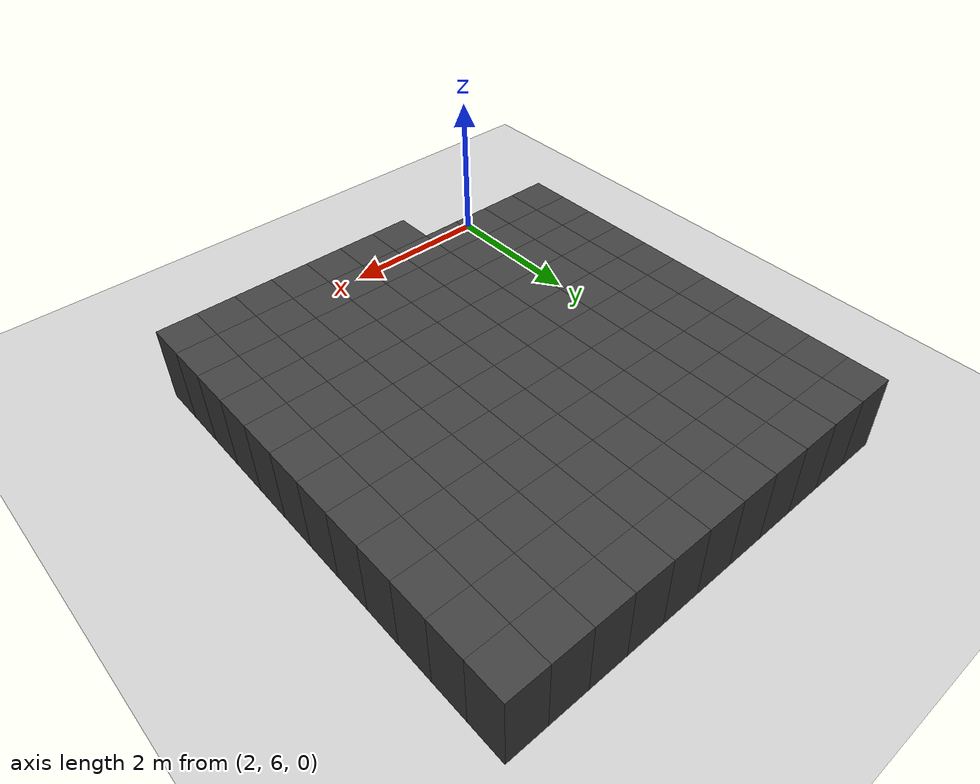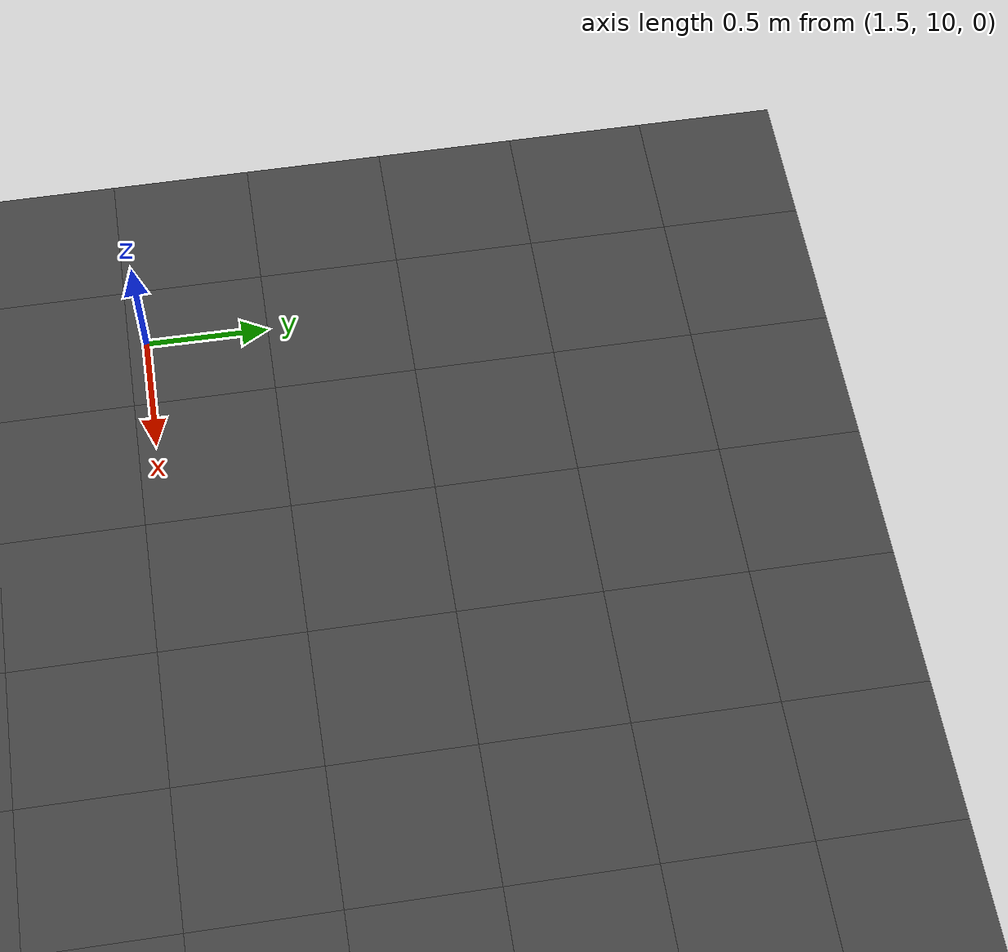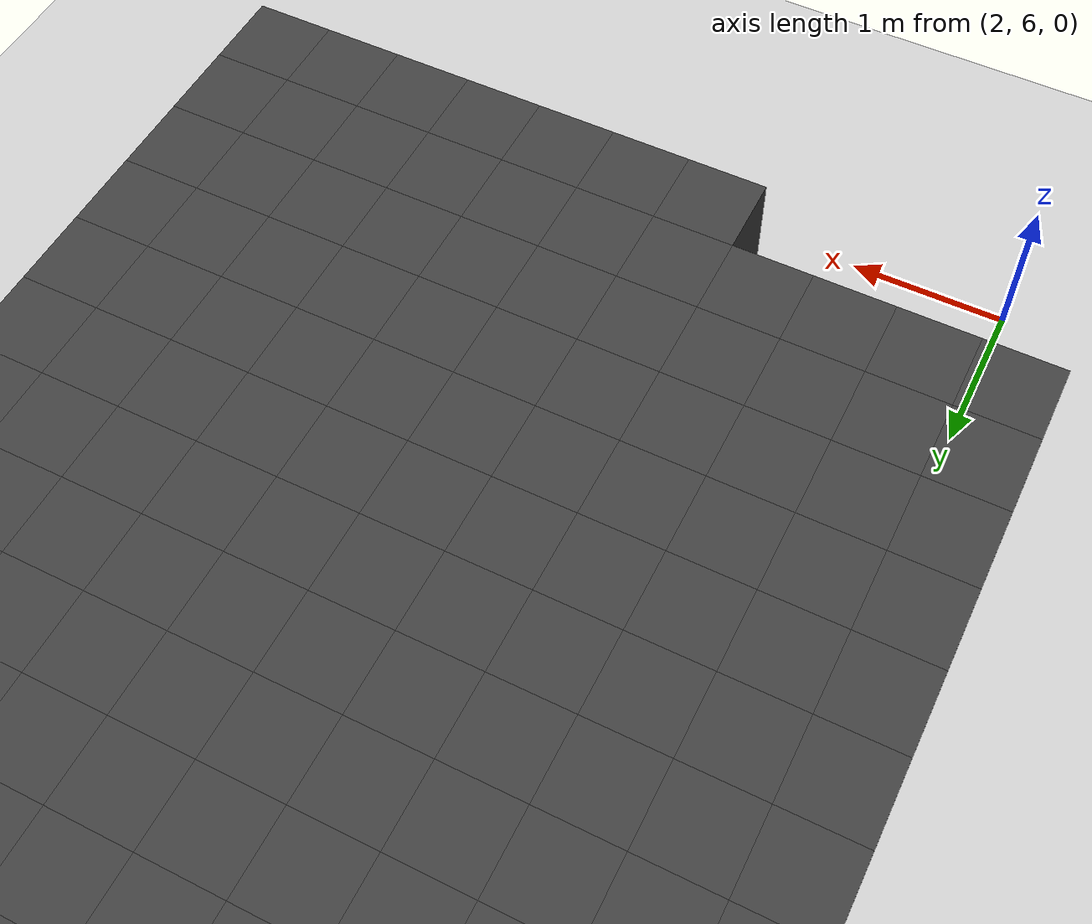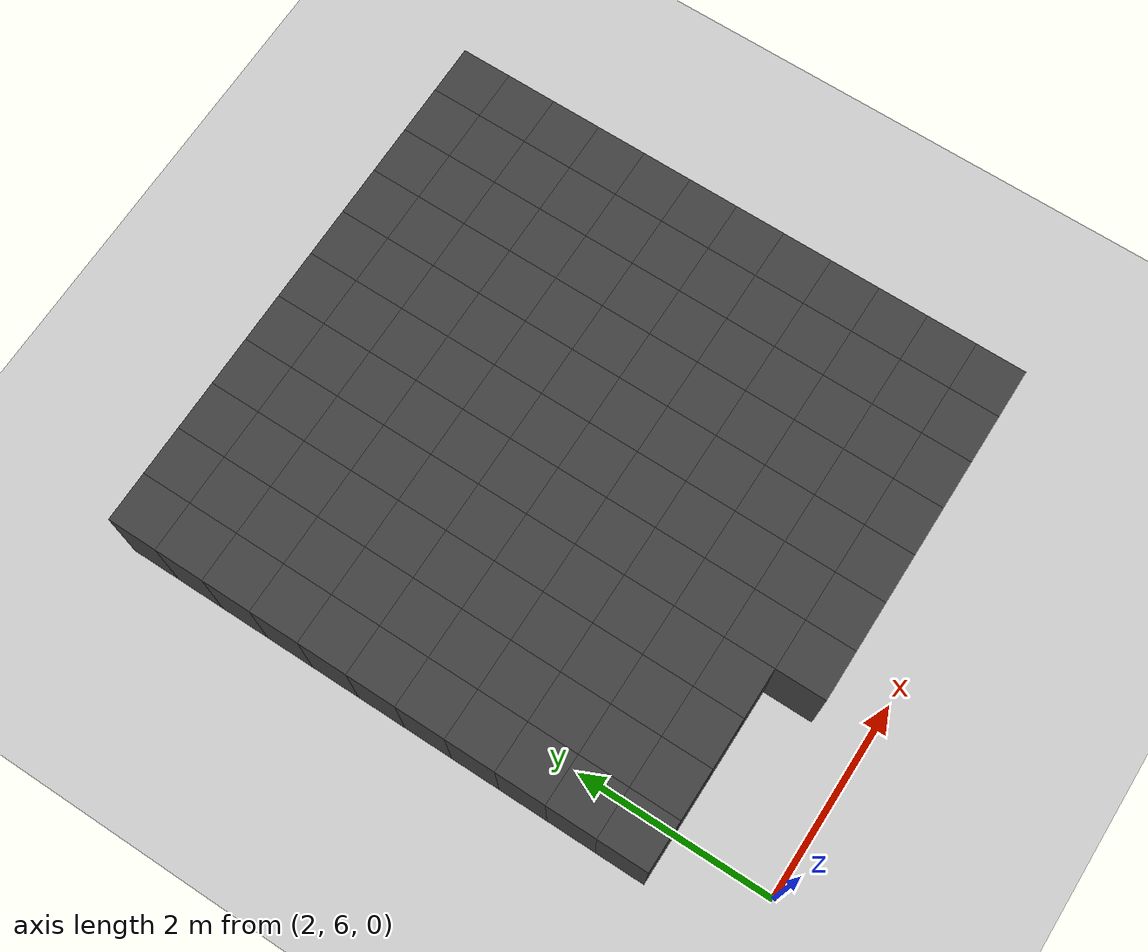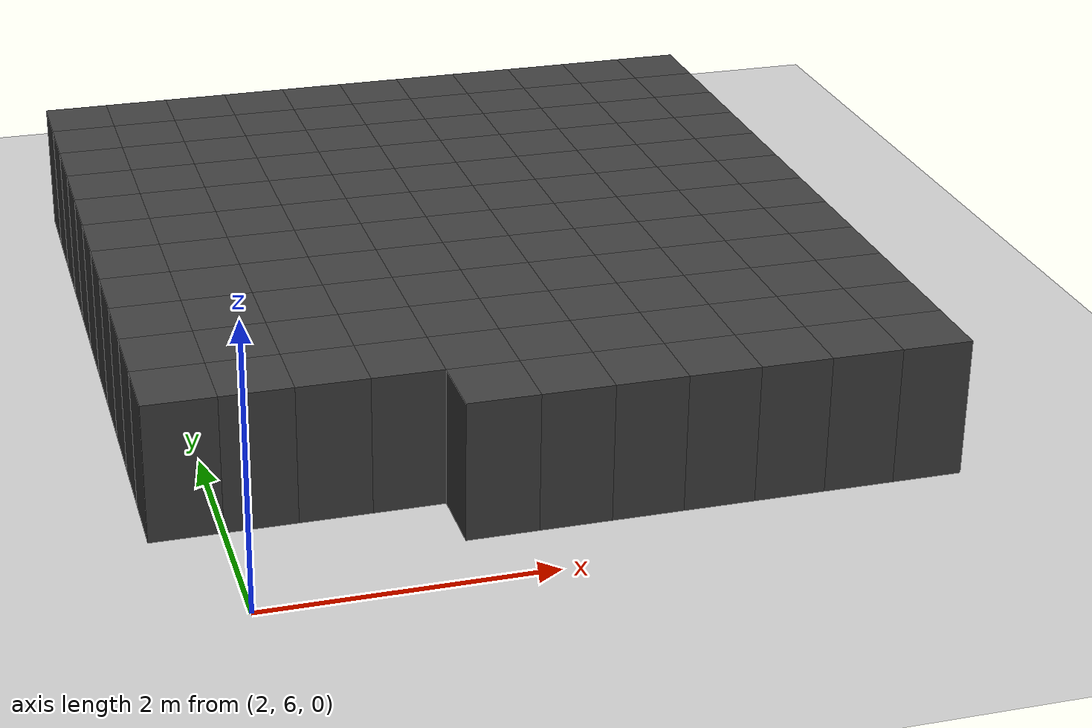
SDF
<sdf version="1.7">
 <world name="map_12356">
  <model name="ground_plane">
   <static>true</static>
   <link name="link">
    <collision name="collision">
     <geometry><plane><normal>0 0 1</normal><size>200 200</size></plane></geometry>
    </collision>
    <visual name="visual">
     <geometry><plane><normal>0 0 1</normal><size>200 200</size></plane></geometry>
     <material><ambient>0.8 0.8 0.8 1</ambient><diffuse>0.8 0.8 0.8 1</diffuse></material>
    </visual>
   </link>
  </model>
  <model name="maze_environment">
   <static>true</static>
   <link name="wall_28">
    <pose>1.750 12.250 0.500 0 0 0</pose>
    <collision name="col"><geometry><box><size>0.5 0.5 1.0</size></box></geometry></collision>
    <visual name="vis">
     <geometry><box><size>0.5 0.5 1.0</size></box></geometry>
     <material><ambient>0.15 0.15 0.15 1</ambient><diffuse>0.25 0.25 0.25 1</diffuse></material>
    </visual>
   </link>
   <link name="wall_29">
    <pose>2.250 12.250 0.500 0 0 0</pose>
    <collision name="col"><geometry><box><size>0.5 0.5 1.0</size></box></geometry></collision>
    <visual name="vis">
     <geometry><box><size>0.5 0.5 1.0</size></box></geometry>
     <material><ambient>0.15 0.15 0.15 1</ambient><diffuse>0.25 0.25 0.25 1</diffuse></material>
    </visual>
   </link>
   <link name="wall_30">
    <pose>2.750 12.250 0.500 0 0 0</pose>
    <collision name="col"><geometry><box><size>0.5 0.5 1.0</size></box></geometry></collision>
    <visual name="vis">
     <geometry><box><size>0.5 0.5 1.0</size></box></geometry>
     <material><ambient>0.15 0.15 0.15 1</ambient><diffuse>0.25 0.25 0.25 1</diffuse></material>
    </visual>
   </link>
   <link name="wall_31">
    <pose>3.250 12.250 0.500 0 0 0</pose>
    <collision name="col"><geometry><box><size>0.5 0.5 1.0</size></box></geometry></collision>
    <visual name="vis">
     <geometry><box><size>0.5 0.5 1.0</size></box></geometry>
     <material><ambient>0.15 0.15 0.15 1</ambient><diffuse>0.25 0.25 0.25 1</diffuse></material>
    </visual>
   </link>
   <link name="wall_32">
    <pose>3.750 12.250 0.500 0 0 0</pose>
    <collision name="col"><geometry><box><size>0.5 0.5 1.0</size></box></geometry></collision>
    <visual name="vis">
     <geometry><box><size>0.5 0.5 1.0</size></box></geometry>
     <material><ambient>0.15 0.15 0.15 1</ambient><diffuse>0.25 0.25 0.25 1</diffuse></material>
    </visual>
   </link>
   <link name="wall_33">
    <pose>4.250 12.250 0.500 0 0 0</pose>
    <collision name="col"><geometry><box><size>0.5 0.5 1.0</size></box></geometry></collision>
    <visual name="vis">
     <geometry><box><size>0.5 0.5 1.0</size></box></geometry>
     <material><ambient>0.15 0.15 0.15 1</ambient><diffuse>0.25 0.25 0.25 1</diffuse></material>
    </visual>
   </link>
   <link name="wall_34">
    <pose>4.750 12.250 0.500 0 0 0</pose>
    <collision name="col"><geometry><box><size>0.5 0.5 1.0</size></box></geometry></collision>
    <visual name="vis">
     <geometry><box><size>0.5 0.5 1.0</size></box></geometry>
     <material><ambient>0.15 0.15 0.15 1</ambient><diffuse>0.25 0.25 0.25 1</diffuse></material>
    </visual>
   </link>
   <link name="wall_35">
    <pose>5.250 12.250 0.500 0 0 0</pose>
    <collision name="col"><geometry><box><size>0.5 0.5 1.0</size></box></geometry></collision>
    <visual name="vis">
     <geometry><box><size>0.5 0.5 1.0</size></box></geometry>
     <material><ambient>0.15 0.15 0.15 1</ambient><diffuse>0.25 0.25 0.25 1</diffuse></material>
    </visual>
   </link>
   <link name="wall_36">
    <pose>5.750 12.250 0.500 0 0 0</pose>
    <collision name="col"><geometry><box><size>0.5 0.5 1.0</size></box></geometry></collision>
    <visual name="vis">
     <geometry><box><size>0.5 0.5 1.0</size></box></geometry>
     <material><ambient>0.15 0.15 0.15 1</ambient><diffuse>0.25 0.25 0.25 1</diffuse></material>
    </visual>
   </link>
   <link name="wall_37">
    <pose>6.250 12.250 0.500 0 0 0</pose>
    <collision name="col"><geometry><box><size>0.5 0.5 1.0</size></box></geometry></collision>
    <visual name="vis">
     <geometry><box><size>0.5 0.5 1.0</size></box></geometry>
     <material><ambient>0.15 0.15 0.15 1</ambient><diffuse>0.25 0.25 0.25 1</diffuse></material>
    </visual>
   </link>
   <link name="wall_38">
    <pose>6.750 12.250 0.500 0 0 0</pose>
    <collision name="col"><geometry><box><size>0.5 0.5 1.0</size></box></geometry></collision>
    <visual name="vis">
     <geometry><box><size>0.5 0.5 1.0</size></box></geometry>
     <material><ambient>0.15 0.15 0.15 1</ambient><diffuse>0.25 0.25 0.25 1</diffuse></material>
    </visual>
   </link>
   <link name="wall_75">
    <pose>1.750 11.750 0.500 0 0 0</pose>
    <collision name="col"><geometry><box><size>0.5 0.5 1.0</size></box></geometry></collision>
    <visual name="vis">
     <geometry><box><size>0.5 0.5 1.0</size></box></geometry>
     <material><ambient>0.15 0.15 0.15 1</ambient><diffuse>0.25 0.25 0.25 1</diffuse></material>
    </visual>
   </link>
   <link name="wall_76">
    <pose>2.250 11.750 0.500 0 0 0</pose>
    <collision name="col"><geometry><box><size>0.5 0.5 1.0</size></box></geometry></collision>
    <visual name="vis">
     <geometry><box><size>0.5 0.5 1.0</size></box></geometry>
     <material><ambient>0.15 0.15 0.15 1</ambient><diffuse>0.25 0.25 0.25 1</diffuse></material>
    </visual>
   </link>
   <link name="wall_77">
    <pose>2.750 11.750 0.500 0 0 0</pose>
    <collision name="col"><geometry><box><size>0.5 0.5 1.0</size></box></geometry></collision>
    <visual name="vis">
     <geometry><box><size>0.5 0.5 1.0</size></box></geometry>
     <material><ambient>0.15 0.15 0.15 1</ambient><diffuse>0.25 0.25 0.25 1</diffuse></material>
    </visual>
   </link>
   <link name="wall_78">
    <pose>3.250 11.750 0.500 0 0 0</pose>
    <collision name="col"><geometry><box><size>0.5 0.5 1.0</size></box></geometry></collision>
    <visual name="vis">
     <geometry><box><size>0.5 0.5 1.0</size></box></geometry>
     <material><ambient>0.15 0.15 0.15 1</ambient><diffuse>0.25 0.25 0.25 1</diffuse></material>
    </visual>
   </link>
   <link name="wall_79">
    <pose>3.750 11.750 0.500 0 0 0</pose>
    <collision name="col"><geometry><box><size>0.5 0.5 1.0</size></box></geometry></collision>
    <visual name="vis">
     <geometry><box><size>0.5 0.5 1.0</size></box></geometry>
     <material><ambient>0.15 0.15 0.15 1</ambient><diffuse>0.25 0.25 0.25 1</diffuse></material>
    </visual>
   </link>
   <link name="wall_80">
    <pose>4.250 11.750 0.500 0 0 0</pose>
    <collision name="col"><geometry><box><size>0.5 0.5 1.0</size></box></geometry></collision>
    <visual name="vis">
     <geometry><box><size>0.5 0.5 1.0</size></box></geometry>
     <material><ambient>0.15 0.15 0.15 1</ambient><diffuse>0.25 0.25 0.25 1</diffuse></material>
    </visual>
   </link>
   <link name="wall_81">
    <pose>4.750 11.750 0.500 0 0 0</pose>
    <collision name="col"><geometry><box><size>0.5 0.5 1.0</size></box></geometry></collision>
    <visual name="vis">
     <geometry><box><size>0.5 0.5 1.0</size></box></geometry>
     <material><ambient>0.15 0.15 0.15 1</ambient><diffuse>0.25 0.25 0.25 1</diffuse></material>
    </visual>
   </link>
   <link name="wall_82">
    <pose>5.250 11.750 0.500 0 0 0</pose>
    <collision name="col"><geometry><box><size>0.5 0.5 1.0</size></box></geometry></collision>
    <visual name="vis">
     <geometry><box><size>0.5 0.5 1.0</size></box></geometry>
     <material><ambient>0.15 0.15 0.15 1</ambient><diffuse>0.25 0.25 0.25 1</diffuse></material>
    </visual>
   </link>
   <link name="wall_83">
    <pose>5.750 11.750 0.500 0 0 0</pose>
    <collision name="col"><geometry><box><size>0.5 0.5 1.0</size></box></geometry></collision>
    <visual name="vis">
     <geometry><box><size>0.5 0.5 1.0</size></box></geometry>
     <material><ambient>0.15 0.15 0.15 1</ambient><diffuse>0.25 0.25 0.25 1</diffuse></material>
    </visual>
   </link>
   <link name="wall_84">
    <pose>6.250 11.750 0.500 0 0 0</pose>
    <collision name="col"><geometry><box><size>0.5 0.5 1.0</size></box></geometry></collision>
    <visual name="vis">
     <geometry><box><size>0.5 0.5 1.0</size></box></geometry>
     <material><ambient>0.15 0.15 0.15 1</ambient><diffuse>0.25 0.25 0.25 1</diffuse></material>
    </visual>
   </link>
   <link name="wall_85">
    <pose>6.750 11.750 0.500 0 0 0</pose>
    <collision name="col"><geometry><box><size>0.5 0.5 1.0</size></box></geometry></collision>
    <visual name="vis">
     <geometry><box><size>0.5 0.5 1.0</size></box></geometry>
     <material><ambient>0.15 0.15 0.15 1</ambient><diffuse>0.25 0.25 0.25 1</diffuse></material>
    </visual>
   </link>
   <link name="wall_116">
    <pose>1.750 11.250 0.500 0 0 0</pose>
    <collision name="col"><geometry><box><size>0.5 0.5 1.0</size></box></geometry></collision>
    <visual name="vis">
     <geometry><box><size>0.5 0.5 1.0</size></box></geometry>
     <material><ambient>0.15 0.15 0.15 1</ambient><diffuse>0.25 0.25 0.25 1</diffuse></material>
    </visual>
   </link>
   <link name="wall_117">
    <pose>2.250 11.250 0.500 0 0 0</pose>
    <collision name="col"><geometry><box><size>0.5 0.5 1.0</size></box></geometry></collision>
    <visual name="vis">
     <geometry><box><size>0.5 0.5 1.0</size></box></geometry>
     <material><ambient>0.15 0.15 0.15 1</ambient><diffuse>0.25 0.25 0.25 1</diffuse></material>
    </visual>
   </link>
   <link name="wall_118">
    <pose>2.750 11.250 0.500 0 0 0</pose>
    <collision name="col"><geometry><box><size>0.5 0.5 1.0</size></box></geometry></collision>
    <visual name="vis">
     <geometry><box><size>0.5 0.5 1.0</size></box></geometry>
     <material><ambient>0.15 0.15 0.15 1</ambient><diffuse>0.25 0.25 0.25 1</diffuse></material>
    </visual>
   </link>
   <link name="wall_119">
    <pose>3.250 11.250 0.500 0 0 0</pose>
    <collision name="col"><geometry><box><size>0.5 0.5 1.0</size></box></geometry></collision>
    <visual name="vis">
     <geometry><box><size>0.5 0.5 1.0</size></box></geometry>
     <material><ambient>0.15 0.15 0.15 1</ambient><diffuse>0.25 0.25 0.25 1</diffuse></material>
    </visual>
   </link>
   <link name="wall_120">
    <pose>3.750 11.250 0.500 0 0 0</pose>
    <collision name="col"><geometry><box><size>0.5 0.5 1.0</size></box></geometry></collision>
    <visual name="vis">
     <geometry><box><size>0.5 0.5 1.0</size></box></geometry>
     <material><ambient>0.15 0.15 0.15 1</ambient><diffuse>0.25 0.25 0.25 1</diffuse></material>
    </visual>
   </link>
   <link name="wall_121">
    <pose>4.250 11.250 0.500 0 0 0</pose>
    <collision name="col"><geometry><box><size>0.5 0.5 1.0</size></box></geometry></collision>
    <visual name="vis">
     <geometry><box><size>0.5 0.5 1.0</size></box></geometry>
     <material><ambient>0.15 0.15 0.15 1</ambient><diffuse>0.25 0.25 0.25 1</diffuse></material>
    </visual>
   </link>
   <link name="wall_122">
    <pose>4.750 11.250 0.500 0 0 0</pose>
    <collision name="col"><geometry><box><size>0.5 0.5 1.0</size></box></geometry></collision>
    <visual name="vis">
     <geometry><box><size>0.5 0.5 1.0</size></box></geometry>
     <material><ambient>0.15 0.15 0.15 1</ambient><diffuse>0.25 0.25 0.25 1</diffuse></material>
    </visual>
   </link>
   <link name="wall_123">
    <pose>5.250 11.250 0.500 0 0 0</pose>
    <collision name="col"><geometry><box><size>0.5 0.5 1.0</size></box></geometry></collision>
    <visual name="vis">
     <geometry><box><size>0.5 0.5 1.0</size></box></geometry>
     <material><ambient>0.15 0.15 0.15 1</ambient><diffuse>0.25 0.25 0.25 1</diffuse></material>
    </visual>
   </link>
   <link name="wall_124">
    <pose>5.750 11.250 0.500 0 0 0</pose>
    <collision name="col"><geometry><box><size>0.5 0.5 1.0</size></box></geometry></collision>
    <visual name="vis">
     <geometry><box><size>0.5 0.5 1.0</size></box></geometry>
     <material><ambient>0.15 0.15 0.15 1</ambient><diffuse>0.25 0.25 0.25 1</diffuse></material>
    </visual>
   </link>
   <link name="wall_125">
    <pose>6.250 11.250 0.500 0 0 0</pose>
    <collision name="col"><geometry><box><size>0.5 0.5 1.0</size></box></geometry></collision>
    <visual name="vis">
     <geometry><box><size>0.5 0.5 1.0</size></box></geometry>
     <material><ambient>0.15 0.15 0.15 1</ambient><diffuse>0.25 0.25 0.25 1</diffuse></material>
    </visual>
   </link>
   <link name="wall_126">
    <pose>6.750 11.250 0.500 0 0 0</pose>
    <collision name="col"><geometry><box><size>0.5 0.5 1.0</size></box></geometry></collision>
    <visual name="vis">
     <geometry><box><size>0.5 0.5 1.0</size></box></geometry>
     <material><ambient>0.15 0.15 0.15 1</ambient><diffuse>0.25 0.25 0.25 1</diffuse></material>
    </visual>
   </link>
   <link name="wall_157">
    <pose>1.750 10.750 0.500 0 0 0</pose>
    <collision name="col"><geometry><box><size>0.5 0.5 1.0</size></box></geometry></collision>
    <visual name="vis">
     <geometry><box><size>0.5 0.5 1.0</size></box></geometry>
     <material><ambient>0.15 0.15 0.15 1</ambient><diffuse>0.25 0.25 0.25 1</diffuse></material>
    </visual>
   </link>
   <link name="wall_158">
    <pose>2.250 10.750 0.500 0 0 0</pose>
    <collision name="col"><geometry><box><size>0.5 0.5 1.0</size></box></geometry></collision>
    <visual name="vis">
     <geometry><box><size>0.5 0.5 1.0</size></box></geometry>
     <material><ambient>0.15 0.15 0.15 1</ambient><diffuse>0.25 0.25 0.25 1</diffuse></material>
    </visual>
   </link>
   <link name="wall_159">
    <pose>2.750 10.750 0.500 0 0 0</pose>
    <collision name="col"><geometry><box><size>0.5 0.5 1.0</size></box></geometry></collision>
    <visual name="vis">
     <geometry><box><size>0.5 0.5 1.0</size></box></geometry>
     <material><ambient>0.15 0.15 0.15 1</ambient><diffuse>0.25 0.25 0.25 1</diffuse></material>
    </visual>
   </link>
   <link name="wall_160">
    <pose>3.250 10.750 0.500 0 0 0</pose>
    <collision name="col"><geometry><box><size>0.5 0.5 1.0</size></box></geometry></collision>
    <visual name="vis">
     <geometry><box><size>0.5 0.5 1.0</size></box></geometry>
     <material><ambient>0.15 0.15 0.15 1</ambient><diffuse>0.25 0.25 0.25 1</diffuse></material>
    </visual>
   </link>
   <link name="wall_161">
    <pose>3.750 10.750 0.500 0 0 0</pose>
    <collision name="col"><geometry><box><size>0.5 0.5 1.0</size></box></geometry></collision>
    <visual name="vis">
     <geometry><box><size>0.5 0.5 1.0</size></box></geometry>
     <material><ambient>0.15 0.15 0.15 1</ambient><diffuse>0.25 0.25 0.25 1</diffuse></material>
    </visual>
   </link>
   <link name="wall_162">
    <pose>4.250 10.750 0.500 0 0 0</pose>
    <collision name="col"><geometry><box><size>0.5 0.5 1.0</size></box></geometry></collision>
    <visual name="vis">
     <geometry><box><size>0.5 0.5 1.0</size></box></geometry>
     <material><ambient>0.15 0.15 0.15 1</ambient><diffuse>0.25 0.25 0.25 1</diffuse></material>
    </visual>
   </link>
   <link name="wall_163">
    <pose>4.750 10.750 0.500 0 0 0</pose>
    <collision name="col"><geometry><box><size>0.5 0.5 1.0</size></box></geometry></collision>
    <visual name="vis">
     <geometry><box><size>0.5 0.5 1.0</size></box></geometry>
     <material><ambient>0.15 0.15 0.15 1</ambient><diffuse>0.25 0.25 0.25 1</diffuse></material>
    </visual>
   </link>
   <link name="wall_164">
    <pose>5.250 10.750 0.500 0 0 0</pose>
    <collision name="col"><geometry><box><size>0.5 0.5 1.0</size></box></geometry></collision>
    <visual name="vis">
     <geometry><box><size>0.5 0.5 1.0</size></box></geometry>
     <material><ambient>0.15 0.15 0.15 1</ambient><diffuse>0.25 0.25 0.25 1</diffuse></material>
    </visual>
   </link>
   <link name="wall_165">
    <pose>5.750 10.750 0.500 0 0 0</pose>
    <collision name="col"><geometry><box><size>0.5 0.5 1.0</size></box></geometry></collision>
    <visual name="vis">
     <geometry><box><size>0.5 0.5 1.0</size></box></geometry>
     <material><ambient>0.15 0.15 0.15 1</ambient><diffuse>0.25 0.25 0.25 1</diffuse></material>
    </visual>
   </link>
   <link name="wall_166">
    <pose>6.250 10.750 0.500 0 0 0</pose>
    <collision name="col"><geometry><box><size>0.5 0.5 1.0</size></box></geometry></collision>
    <visual name="vis">
     <geometry><box><size>0.5 0.5 1.0</size></box></geometry>
     <material><ambient>0.15 0.15 0.15 1</ambient><diffuse>0.25 0.25 0.25 1</diffuse></material>
    </visual>
   </link>
   <link name="wall_167">
    <pose>6.750 10.750 0.500 0 0 0</pose>
    <collision name="col"><geometry><box><size>0.5 0.5 1.0</size></box></geometry></collision>
    <visual name="vis">
     <geometry><box><size>0.5 0.5 1.0</size></box></geometry>
     <material><ambient>0.15 0.15 0.15 1</ambient><diffuse>0.25 0.25 0.25 1</diffuse></material>
    </visual>
   </link>
   <link name="wall_189">
    <pose>1.750 10.250 0.500 0 0 0</pose>
    <collision name="col"><geometry><box><size>0.5 0.5 1.0</size></box></geometry></collision>
    <visual name="vis">
     <geometry><box><size>0.5 0.5 1.0</size></box></geometry>
     <material><ambient>0.15 0.15 0.15 1</ambient><diffuse>0.25 0.25 0.25 1</diffuse></material>
    </visual>
   </link>
   <link name="wall_190">
    <pose>2.250 10.250 0.500 0 0 0</pose>
    <collision name="col"><geometry><box><size>0.5 0.5 1.0</size></box></geometry></collision>
    <visual name="vis">
     <geometry><box><size>0.5 0.5 1.0</size></box></geometry>
     <material><ambient>0.15 0.15 0.15 1</ambient><diffuse>0.25 0.25 0.25 1</diffuse></material>
    </visual>
   </link>
   <link name="wall_191">
    <pose>2.750 10.250 0.500 0 0 0</pose>
    <collision name="col"><geometry><box><size>0.5 0.5 1.0</size></box></geometry></collision>
    <visual name="vis">
     <geometry><box><size>0.5 0.5 1.0</size></box></geometry>
     <material><ambient>0.15 0.15 0.15 1</ambient><diffuse>0.25 0.25 0.25 1</diffuse></material>
    </visual>
   </link>
   <link name="wall_192">
    <pose>3.250 10.250 0.500 0 0 0</pose>
    <collision name="col"><geometry><box><size>0.5 0.5 1.0</size></box></geometry></collision>
    <visual name="vis">
     <geometry><box><size>0.5 0.5 1.0</size></box></geometry>
     <material><ambient>0.15 0.15 0.15 1</ambient><diffuse>0.25 0.25 0.25 1</diffuse></material>
    </visual>
   </link>
   <link name="wall_193">
    <pose>3.750 10.250 0.500 0 0 0</pose>
    <collision name="col"><geometry><box><size>0.5 0.5 1.0</size></box></geometry></collision>
    <visual name="vis">
     <geometry><box><size>0.5 0.5 1.0</size></box></geometry>
     <material><ambient>0.15 0.15 0.15 1</ambient><diffuse>0.25 0.25 0.25 1</diffuse></material>
    </visual>
   </link>
   <link name="wall_194">
    <pose>4.250 10.250 0.500 0 0 0</pose>
    <collision name="col"><geometry><box><size>0.5 0.5 1.0</size></box></geometry></collision>
    <visual name="vis">
     <geometry><box><size>0.5 0.5 1.0</size></box></geometry>
     <material><ambient>0.15 0.15 0.15 1</ambient><diffuse>0.25 0.25 0.25 1</diffuse></material>
    </visual>
   </link>
   <link name="wall_195">
    <pose>4.750 10.250 0.500 0 0 0</pose>
    <collision name="col"><geometry><box><size>0.5 0.5 1.0</size></box></geometry></collision>
    <visual name="vis">
     <geometry><box><size>0.5 0.5 1.0</size></box></geometry>
     <material><ambient>0.15 0.15 0.15 1</ambient><diffuse>0.25 0.25 0.25 1</diffuse></material>
    </visual>
   </link>
   <link name="wall_196">
    <pose>5.250 10.250 0.500 0 0 0</pose>
    <collision name="col"><geometry><box><size>0.5 0.5 1.0</size></box></geometry></collision>
    <visual name="vis">
     <geometry><box><size>0.5 0.5 1.0</size></box></geometry>
     <material><ambient>0.15 0.15 0.15 1</ambient><diffuse>0.25 0.25 0.25 1</diffuse></material>
    </visual>
   </link>
   <link name="wall_197">
    <pose>5.750 10.250 0.500 0 0 0</pose>
    <collision name="col"><geometry><box><size>0.5 0.5 1.0</size></box></geometry></collision>
    <visual name="vis">
     <geometry><box><size>0.5 0.5 1.0</size></box></geometry>
     <material><ambient>0.15 0.15 0.15 1</ambient><diffuse>0.25 0.25 0.25 1</diffuse></material>
    </visual>
   </link>
   <link name="wall_198">
    <pose>6.250 10.250 0.500 0 0 0</pose>
    <collision name="col"><geometry><box><size>0.5 0.5 1.0</size></box></geometry></collision>
    <visual name="vis">
     <geometry><box><size>0.5 0.5 1.0</size></box></geometry>
     <material><ambient>0.15 0.15 0.15 1</ambient><diffuse>0.25 0.25 0.25 1</diffuse></material>
    </visual>
   </link>
   <link name="wall_199">
    <pose>6.750 10.250 0.500 0 0 0</pose>
    <collision name="col"><geometry><box><size>0.5 0.5 1.0</size></box></geometry></collision>
    <visual name="vis">
     <geometry><box><size>0.5 0.5 1.0</size></box></geometry>
     <material><ambient>0.15 0.15 0.15 1</ambient><diffuse>0.25 0.25 0.25 1</diffuse></material>
    </visual>
   </link>
   <link name="wall_221">
    <pose>1.750 9.750 0.500 0 0 0</pose>
    <collision name="col"><geometry><box><size>0.5 0.5 1.0</size></box></geometry></collision>
    <visual name="vis">
     <geometry><box><size>0.5 0.5 1.0</size></box></geometry>
     <material><ambient>0.15 0.15 0.15 1</ambient><diffuse>0.25 0.25 0.25 1</diffuse></material>
    </visual>
   </link>
   <link name="wall_222">
    <pose>2.250 9.750 0.500 0 0 0</pose>
    <collision name="col"><geometry><box><size>0.5 0.5 1.0</size></box></geometry></collision>
    <visual name="vis">
     <geometry><box><size>0.5 0.5 1.0</size></box></geometry>
     <material><ambient>0.15 0.15 0.15 1</ambient><diffuse>0.25 0.25 0.25 1</diffuse></material>
    </visual>
   </link>
   <link name="wall_223">
    <pose>2.750 9.750 0.500 0 0 0</pose>
    <collision name="col"><geometry><box><size>0.5 0.5 1.0</size></box></geometry></collision>
    <visual name="vis">
     <geometry><box><size>0.5 0.5 1.0</size></box></geometry>
     <material><ambient>0.15 0.15 0.15 1</ambient><diffuse>0.25 0.25 0.25 1</diffuse></material>
    </visual>
   </link>
   <link name="wall_224">
    <pose>3.250 9.750 0.500 0 0 0</pose>
    <collision name="col"><geometry><box><size>0.5 0.5 1.0</size></box></geometry></collision>
    <visual name="vis">
     <geometry><box><size>0.5 0.5 1.0</size></box></geometry>
     <material><ambient>0.15 0.15 0.15 1</ambient><diffuse>0.25 0.25 0.25 1</diffuse></material>
    </visual>
   </link>
   <link name="wall_225">
    <pose>3.750 9.750 0.500 0 0 0</pose>
    <collision name="col"><geometry><box><size>0.5 0.5 1.0</size></box></geometry></collision>
    <visual name="vis">
     <geometry><box><size>0.5 0.5 1.0</size></box></geometry>
     <material><ambient>0.15 0.15 0.15 1</ambient><diffuse>0.25 0.25 0.25 1</diffuse></material>
    </visual>
   </link>
   <link name="wall_226">
    <pose>4.250 9.750 0.500 0 0 0</pose>
    <collision name="col"><geometry><box><size>0.5 0.5 1.0</size></box></geometry></collision>
    <visual name="vis">
     <geometry><box><size>0.5 0.5 1.0</size></box></geometry>
     <material><ambient>0.15 0.15 0.15 1</ambient><diffuse>0.25 0.25 0.25 1</diffuse></material>
    </visual>
   </link>
   <link name="wall_227">
    <pose>4.750 9.750 0.500 0 0 0</pose>
    <collision name="col"><geometry><box><size>0.5 0.5 1.0</size></box></geometry></collision>
    <visual name="vis">
     <geometry><box><size>0.5 0.5 1.0</size></box></geometry>
     <material><ambient>0.15 0.15 0.15 1</ambient><diffuse>0.25 0.25 0.25 1</diffuse></material>
    </visual>
   </link>
   <link name="wall_228">
    <pose>5.250 9.750 0.500 0 0 0</pose>
    <collision name="col"><geometry><box><size>0.5 0.5 1.0</size></box></geometry></collision>
    <visual name="vis">
     <geometry><box><size>0.5 0.5 1.0</size></box></geometry>
     <material><ambient>0.15 0.15 0.15 1</ambient><diffuse>0.25 0.25 0.25 1</diffuse></material>
    </visual>
   </link>
   <link name="wall_229">
    <pose>5.750 9.750 0.500 0 0 0</pose>
    <collision name="col"><geometry><box><size>0.5 0.5 1.0</size></box></geometry></collision>
    <visual name="vis">
     <geometry><box><size>0.5 0.5 1.0</size></box></geometry>
     <material><ambient>0.15 0.15 0.15 1</ambient><diffuse>0.25 0.25 0.25 1</diffuse></material>
    </visual>
   </link>
   <link name="wall_230">
    <pose>6.250 9.750 0.500 0 0 0</pose>
    <collision name="col"><geometry><box><size>0.5 0.5 1.0</size></box></geometry></collision>
    <visual name="vis">
     <geometry><box><size>0.5 0.5 1.0</size></box></geometry>
     <material><ambient>0.15 0.15 0.15 1</ambient><diffuse>0.25 0.25 0.25 1</diffuse></material>
    </visual>
   </link>
   <link name="wall_231">
    <pose>6.750 9.750 0.500 0 0 0</pose>
    <collision name="col"><geometry><box><size>0.5 0.5 1.0</size></box></geometry></collision>
    <visual name="vis">
     <geometry><box><size>0.5 0.5 1.0</size></box></geometry>
     <material><ambient>0.15 0.15 0.15 1</ambient><diffuse>0.25 0.25 0.25 1</diffuse></material>
    </visual>
   </link>
   <link name="wall_246">
    <pose>1.750 9.250 0.500 0 0 0</pose>
    <collision name="col"><geometry><box><size>0.5 0.5 1.0</size></box></geometry></collision>
    <visual name="vis">
     <geometry><box><size>0.5 0.5 1.0</size></box></geometry>
     <material><ambient>0.15 0.15 0.15 1</ambient><diffuse>0.25 0.25 0.25 1</diffuse></material>
    </visual>
   </link>
   <link name="wall_247">
    <pose>2.250 9.250 0.500 0 0 0</pose>
    <collision name="col"><geometry><box><size>0.5 0.5 1.0</size></box></geometry></collision>
    <visual name="vis">
     <geometry><box><size>0.5 0.5 1.0</size></box></geometry>
     <material><ambient>0.15 0.15 0.15 1</ambient><diffuse>0.25 0.25 0.25 1</diffuse></material>
    </visual>
   </link>
   <link name="wall_248">
    <pose>2.750 9.250 0.500 0 0 0</pose>
    <collision name="col"><geometry><box><size>0.5 0.5 1.0</size></box></geometry></collision>
    <visual name="vis">
     <geometry><box><size>0.5 0.5 1.0</size></box></geometry>
     <material><ambient>0.15 0.15 0.15 1</ambient><diffuse>0.25 0.25 0.25 1</diffuse></material>
    </visual>
   </link>
   <link name="wall_249">
    <pose>3.250 9.250 0.500 0 0 0</pose>
    <collision name="col"><geometry><box><size>0.5 0.5 1.0</size></box></geometry></collision>
    <visual name="vis">
     <geometry><box><size>0.5 0.5 1.0</size></box></geometry>
     <material><ambient>0.15 0.15 0.15 1</ambient><diffuse>0.25 0.25 0.25 1</diffuse></material>
    </visual>
   </link>
   <link name="wall_250">
    <pose>3.750 9.250 0.500 0 0 0</pose>
    <collision name="col"><geometry><box><size>0.5 0.5 1.0</size></box></geometry></collision>
    <visual name="vis">
     <geometry><box><size>0.5 0.5 1.0</size></box></geometry>
     <material><ambient>0.15 0.15 0.15 1</ambient><diffuse>0.25 0.25 0.25 1</diffuse></material>
    </visual>
   </link>
   <link name="wall_251">
    <pose>4.250 9.250 0.500 0 0 0</pose>
    <collision name="col"><geometry><box><size>0.5 0.5 1.0</size></box></geometry></collision>
    <visual name="vis">
     <geometry><box><size>0.5 0.5 1.0</size></box></geometry>
     <material><ambient>0.15 0.15 0.15 1</ambient><diffuse>0.25 0.25 0.25 1</diffuse></material>
    </visual>
   </link>
   <link name="wall_252">
    <pose>4.750 9.250 0.500 0 0 0</pose>
    <collision name="col"><geometry><box><size>0.5 0.5 1.0</size></box></geometry></collision>
    <visual name="vis">
     <geometry><box><size>0.5 0.5 1.0</size></box></geometry>
     <material><ambient>0.15 0.15 0.15 1</ambient><diffuse>0.25 0.25 0.25 1</diffuse></material>
    </visual>
   </link>
   <link name="wall_253">
    <pose>5.250 9.250 0.500 0 0 0</pose>
    <collision name="col"><geometry><box><size>0.5 0.5 1.0</size></box></geometry></collision>
    <visual name="vis">
     <geometry><box><size>0.5 0.5 1.0</size></box></geometry>
     <material><ambient>0.15 0.15 0.15 1</ambient><diffuse>0.25 0.25 0.25 1</diffuse></material>
    </visual>
   </link>
   <link name="wall_254">
    <pose>5.750 9.250 0.500 0 0 0</pose>
    <collision name="col"><geometry><box><size>0.5 0.5 1.0</size></box></geometry></collision>
    <visual name="vis">
     <geometry><box><size>0.5 0.5 1.0</size></box></geometry>
     <material><ambient>0.15 0.15 0.15 1</ambient><diffuse>0.25 0.25 0.25 1</diffuse></material>
    </visual>
   </link>
   <link name="wall_255">
    <pose>6.250 9.250 0.500 0 0 0</pose>
    <collision name="col"><geometry><box><size>0.5 0.5 1.0</size></box></geometry></collision>
    <visual name="vis">
     <geometry><box><size>0.5 0.5 1.0</size></box></geometry>
     <material><ambient>0.15 0.15 0.15 1</ambient><diffuse>0.25 0.25 0.25 1</diffuse></material>
    </visual>
   </link>
   <link name="wall_256">
    <pose>6.750 9.250 0.500 0 0 0</pose>
    <collision name="col"><geometry><box><size>0.5 0.5 1.0</size></box></geometry></collision>
    <visual name="vis">
     <geometry><box><size>0.5 0.5 1.0</size></box></geometry>
     <material><ambient>0.15 0.15 0.15 1</ambient><diffuse>0.25 0.25 0.25 1</diffuse></material>
    </visual>
   </link>
   <link name="wall_270">
    <pose>1.750 8.750 0.500 0 0 0</pose>
    <collision name="col"><geometry><box><size>0.5 0.5 1.0</size></box></geometry></collision>
    <visual name="vis">
     <geometry><box><size>0.5 0.5 1.0</size></box></geometry>
     <material><ambient>0.15 0.15 0.15 1</ambient><diffuse>0.25 0.25 0.25 1</diffuse></material>
    </visual>
   </link>
   <link name="wall_271">
    <pose>2.250 8.750 0.500 0 0 0</pose>
    <collision name="col"><geometry><box><size>0.5 0.5 1.0</size></box></geometry></collision>
    <visual name="vis">
     <geometry><box><size>0.5 0.5 1.0</size></box></geometry>
     <material><ambient>0.15 0.15 0.15 1</ambient><diffuse>0.25 0.25 0.25 1</diffuse></material>
    </visual>
   </link>
   <link name="wall_272">
    <pose>2.750 8.750 0.500 0 0 0</pose>
    <collision name="col"><geometry><box><size>0.5 0.5 1.0</size></box></geometry></collision>
    <visual name="vis">
     <geometry><box><size>0.5 0.5 1.0</size></box></geometry>
     <material><ambient>0.15 0.15 0.15 1</ambient><diffuse>0.25 0.25 0.25 1</diffuse></material>
    </visual>
   </link>
   <link name="wall_273">
    <pose>3.250 8.750 0.500 0 0 0</pose>
    <collision name="col"><geometry><box><size>0.5 0.5 1.0</size></box></geometry></collision>
    <visual name="vis">
     <geometry><box><size>0.5 0.5 1.0</size></box></geometry>
     <material><ambient>0.15 0.15 0.15 1</ambient><diffuse>0.25 0.25 0.25 1</diffuse></material>
    </visual>
   </link>
   <link name="wall_274">
    <pose>3.750 8.750 0.500 0 0 0</pose>
    <collision name="col"><geometry><box><size>0.5 0.5 1.0</size></box></geometry></collision>
    <visual name="vis">
     <geometry><box><size>0.5 0.5 1.0</size></box></geometry>
     <material><ambient>0.15 0.15 0.15 1</ambient><diffuse>0.25 0.25 0.25 1</diffuse></material>
    </visual>
   </link>
   <link name="wall_275">
    <pose>4.250 8.750 0.500 0 0 0</pose>
    <collision name="col"><geometry><box><size>0.5 0.5 1.0</size></box></geometry></collision>
    <visual name="vis">
     <geometry><box><size>0.5 0.5 1.0</size></box></geometry>
     <material><ambient>0.15 0.15 0.15 1</ambient><diffuse>0.25 0.25 0.25 1</diffuse></material>
    </visual>
   </link>
   <link name="wall_276">
    <pose>4.750 8.750 0.500 0 0 0</pose>
    <collision name="col"><geometry><box><size>0.5 0.5 1.0</size></box></geometry></collision>
    <visual name="vis">
     <geometry><box><size>0.5 0.5 1.0</size></box></geometry>
     <material><ambient>0.15 0.15 0.15 1</ambient><diffuse>0.25 0.25 0.25 1</diffuse></material>
    </visual>
   </link>
   <link name="wall_277">
    <pose>5.250 8.750 0.500 0 0 0</pose>
    <collision name="col"><geometry><box><size>0.5 0.5 1.0</size></box></geometry></collision>
    <visual name="vis">
     <geometry><box><size>0.5 0.5 1.0</size></box></geometry>
     <material><ambient>0.15 0.15 0.15 1</ambient><diffuse>0.25 0.25 0.25 1</diffuse></material>
    </visual>
   </link>
   <link name="wall_278">
    <pose>5.750 8.750 0.500 0 0 0</pose>
    <collision name="col"><geometry><box><size>0.5 0.5 1.0</size></box></geometry></collision>
    <visual name="vis">
     <geometry><box><size>0.5 0.5 1.0</size></box></geometry>
     <material><ambient>0.15 0.15 0.15 1</ambient><diffuse>0.25 0.25 0.25 1</diffuse></material>
    </visual>
   </link>
   <link name="wall_279">
    <pose>6.250 8.750 0.500 0 0 0</pose>
    <collision name="col"><geometry><box><size>0.5 0.5 1.0</size></box></geometry></collision>
    <visual name="vis">
     <geometry><box><size>0.5 0.5 1.0</size></box></geometry>
     <material><ambient>0.15 0.15 0.15 1</ambient><diffuse>0.25 0.25 0.25 1</diffuse></material>
    </visual>
   </link>
   <link name="wall_280">
    <pose>6.750 8.750 0.500 0 0 0</pose>
    <collision name="col"><geometry><box><size>0.5 0.5 1.0</size></box></geometry></collision>
    <visual name="vis">
     <geometry><box><size>0.5 0.5 1.0</size></box></geometry>
     <material><ambient>0.15 0.15 0.15 1</ambient><diffuse>0.25 0.25 0.25 1</diffuse></material>
    </visual>
   </link>
   <link name="wall_295">
    <pose>1.750 8.250 0.500 0 0 0</pose>
    <collision name="col"><geometry><box><size>0.5 0.5 1.0</size></box></geometry></collision>
    <visual name="vis">
     <geometry><box><size>0.5 0.5 1.0</size></box></geometry>
     <material><ambient>0.15 0.15 0.15 1</ambient><diffuse>0.25 0.25 0.25 1</diffuse></material>
    </visual>
   </link>
   <link name="wall_296">
    <pose>2.250 8.250 0.500 0 0 0</pose>
    <collision name="col"><geometry><box><size>0.5 0.5 1.0</size></box></geometry></collision>
    <visual name="vis">
     <geometry><box><size>0.5 0.5 1.0</size></box></geometry>
     <material><ambient>0.15 0.15 0.15 1</ambient><diffuse>0.25 0.25 0.25 1</diffuse></material>
    </visual>
   </link>
   <link name="wall_297">
    <pose>2.750 8.250 0.500 0 0 0</pose>
    <collision name="col"><geometry><box><size>0.5 0.5 1.0</size></box></geometry></collision>
    <visual name="vis">
     <geometry><box><size>0.5 0.5 1.0</size></box></geometry>
     <material><ambient>0.15 0.15 0.15 1</ambient><diffuse>0.25 0.25 0.25 1</diffuse></material>
    </visual>
   </link>
   <link name="wall_298">
    <pose>3.250 8.250 0.500 0 0 0</pose>
    <collision name="col"><geometry><box><size>0.5 0.5 1.0</size></box></geometry></collision>
    <visual name="vis">
     <geometry><box><size>0.5 0.5 1.0</size></box></geometry>
     <material><ambient>0.15 0.15 0.15 1</ambient><diffuse>0.25 0.25 0.25 1</diffuse></material>
    </visual>
   </link>
   <link name="wall_299">
    <pose>3.750 8.250 0.500 0 0 0</pose>
    <collision name="col"><geometry><box><size>0.5 0.5 1.0</size></box></geometry></collision>
    <visual name="vis">
     <geometry><box><size>0.5 0.5 1.0</size></box></geometry>
     <material><ambient>0.15 0.15 0.15 1</ambient><diffuse>0.25 0.25 0.25 1</diffuse></material>
    </visual>
   </link>
   <link name="wall_300">
    <pose>4.250 8.250 0.500 0 0 0</pose>
    <collision name="col"><geometry><box><size>0.5 0.5 1.0</size></box></geometry></collision>
    <visual name="vis">
     <geometry><box><size>0.5 0.5 1.0</size></box></geometry>
     <material><ambient>0.15 0.15 0.15 1</ambient><diffuse>0.25 0.25 0.25 1</diffuse></material>
    </visual>
   </link>
   <link name="wall_301">
    <pose>4.750 8.250 0.500 0 0 0</pose>
    <collision name="col"><geometry><box><size>0.5 0.5 1.0</size></box></geometry></collision>
    <visual name="vis">
     <geometry><box><size>0.5 0.5 1.0</size></box></geometry>
     <material><ambient>0.15 0.15 0.15 1</ambient><diffuse>0.25 0.25 0.25 1</diffuse></material>
    </visual>
   </link>
   <link name="wall_302">
    <pose>5.250 8.250 0.500 0 0 0</pose>
    <collision name="col"><geometry><box><size>0.5 0.5 1.0</size></box></geometry></collision>
    <visual name="vis">
     <geometry><box><size>0.5 0.5 1.0</size></box></geometry>
     <material><ambient>0.15 0.15 0.15 1</ambient><diffuse>0.25 0.25 0.25 1</diffuse></material>
    </visual>
   </link>
   <link name="wall_303">
    <pose>5.750 8.250 0.500 0 0 0</pose>
    <collision name="col"><geometry><box><size>0.5 0.5 1.0</size></box></geometry></collision>
    <visual name="vis">
     <geometry><box><size>0.5 0.5 1.0</size></box></geometry>
     <material><ambient>0.15 0.15 0.15 1</ambient><diffuse>0.25 0.25 0.25 1</diffuse></material>
    </visual>
   </link>
   <link name="wall_304">
    <pose>6.250 8.250 0.500 0 0 0</pose>
    <collision name="col"><geometry><box><size>0.5 0.5 1.0</size></box></geometry></collision>
    <visual name="vis">
     <geometry><box><size>0.5 0.5 1.0</size></box></geometry>
     <material><ambient>0.15 0.15 0.15 1</ambient><diffuse>0.25 0.25 0.25 1</diffuse></material>
    </visual>
   </link>
   <link name="wall_305">
    <pose>6.750 8.250 0.500 0 0 0</pose>
    <collision name="col"><geometry><box><size>0.5 0.5 1.0</size></box></geometry></collision>
    <visual name="vis">
     <geometry><box><size>0.5 0.5 1.0</size></box></geometry>
     <material><ambient>0.15 0.15 0.15 1</ambient><diffuse>0.25 0.25 0.25 1</diffuse></material>
    </visual>
   </link>
   <link name="wall_324">
    <pose>1.750 7.750 0.500 0 0 0</pose>
    <collision name="col"><geometry><box><size>0.5 0.5 1.0</size></box></geometry></collision>
    <visual name="vis">
     <geometry><box><size>0.5 0.5 1.0</size></box></geometry>
     <material><ambient>0.15 0.15 0.15 1</ambient><diffuse>0.25 0.25 0.25 1</diffuse></material>
    </visual>
   </link>
   <link name="wall_325">
    <pose>2.250 7.750 0.500 0 0 0</pose>
    <collision name="col"><geometry><box><size>0.5 0.5 1.0</size></box></geometry></collision>
    <visual name="vis">
     <geometry><box><size>0.5 0.5 1.0</size></box></geometry>
     <material><ambient>0.15 0.15 0.15 1</ambient><diffuse>0.25 0.25 0.25 1</diffuse></material>
    </visual>
   </link>
   <link name="wall_326">
    <pose>2.750 7.750 0.500 0 0 0</pose>
    <collision name="col"><geometry><box><size>0.5 0.5 1.0</size></box></geometry></collision>
    <visual name="vis">
     <geometry><box><size>0.5 0.5 1.0</size></box></geometry>
     <material><ambient>0.15 0.15 0.15 1</ambient><diffuse>0.25 0.25 0.25 1</diffuse></material>
    </visual>
   </link>
   <link name="wall_327">
    <pose>3.250 7.750 0.500 0 0 0</pose>
    <collision name="col"><geometry><box><size>0.5 0.5 1.0</size></box></geometry></collision>
    <visual name="vis">
     <geometry><box><size>0.5 0.5 1.0</size></box></geometry>
     <material><ambient>0.15 0.15 0.15 1</ambient><diffuse>0.25 0.25 0.25 1</diffuse></material>
    </visual>
   </link>
   <link name="wall_328">
    <pose>3.750 7.750 0.500 0 0 0</pose>
    <collision name="col"><geometry><box><size>0.5 0.5 1.0</size></box></geometry></collision>
    <visual name="vis">
     <geometry><box><size>0.5 0.5 1.0</size></box></geometry>
     <material><ambient>0.15 0.15 0.15 1</ambient><diffuse>0.25 0.25 0.25 1</diffuse></material>
    </visual>
   </link>
   <link name="wall_329">
    <pose>4.250 7.750 0.500 0 0 0</pose>
    <collision name="col"><geometry><box><size>0.5 0.5 1.0</size></box></geometry></collision>
    <visual name="vis">
     <geometry><box><size>0.5 0.5 1.0</size></box></geometry>
     <material><ambient>0.15 0.15 0.15 1</ambient><diffuse>0.25 0.25 0.25 1</diffuse></material>
    </visual>
   </link>
   <link name="wall_330">
    <pose>4.750 7.750 0.500 0 0 0</pose>
    <collision name="col"><geometry><box><size>0.5 0.5 1.0</size></box></geometry></collision>
    <visual name="vis">
     <geometry><box><size>0.5 0.5 1.0</size></box></geometry>
     <material><ambient>0.15 0.15 0.15 1</ambient><diffuse>0.25 0.25 0.25 1</diffuse></material>
    </visual>
   </link>
   <link name="wall_331">
    <pose>5.250 7.750 0.500 0 0 0</pose>
    <collision name="col"><geometry><box><size>0.5 0.5 1.0</size></box></geometry></collision>
    <visual name="vis">
     <geometry><box><size>0.5 0.5 1.0</size></box></geometry>
     <material><ambient>0.15 0.15 0.15 1</ambient><diffuse>0.25 0.25 0.25 1</diffuse></material>
    </visual>
   </link>
   <link name="wall_332">
    <pose>5.750 7.750 0.500 0 0 0</pose>
    <collision name="col"><geometry><box><size>0.5 0.5 1.0</size></box></geometry></collision>
    <visual name="vis">
     <geometry><box><size>0.5 0.5 1.0</size></box></geometry>
     <material><ambient>0.15 0.15 0.15 1</ambient><diffuse>0.25 0.25 0.25 1</diffuse></material>
    </visual>
   </link>
   <link name="wall_333">
    <pose>6.250 7.750 0.500 0 0 0</pose>
    <collision name="col"><geometry><box><size>0.5 0.5 1.0</size></box></geometry></collision>
    <visual name="vis">
     <geometry><box><size>0.5 0.5 1.0</size></box></geometry>
     <material><ambient>0.15 0.15 0.15 1</ambient><diffuse>0.25 0.25 0.25 1</diffuse></material>
    </visual>
   </link>
   <link name="wall_334">
    <pose>6.750 7.750 0.500 0 0 0</pose>
    <collision name="col"><geometry><box><size>0.5 0.5 1.0</size></box></geometry></collision>
    <visual name="vis">
     <geometry><box><size>0.5 0.5 1.0</size></box></geometry>
     <material><ambient>0.15 0.15 0.15 1</ambient><diffuse>0.25 0.25 0.25 1</diffuse></material>
    </visual>
   </link>
   <link name="wall_360">
    <pose>1.750 7.250 0.500 0 0 0</pose>
    <collision name="col"><geometry><box><size>0.5 0.5 1.0</size></box></geometry></collision>
    <visual name="vis">
     <geometry><box><size>0.5 0.5 1.0</size></box></geometry>
     <material><ambient>0.15 0.15 0.15 1</ambient><diffuse>0.25 0.25 0.25 1</diffuse></material>
    </visual>
   </link>
   <link name="wall_361">
    <pose>2.250 7.250 0.500 0 0 0</pose>
    <collision name="col"><geometry><box><size>0.5 0.5 1.0</size></box></geometry></collision>
    <visual name="vis">
     <geometry><box><size>0.5 0.5 1.0</size></box></geometry>
     <material><ambient>0.15 0.15 0.15 1</ambient><diffuse>0.25 0.25 0.25 1</diffuse></material>
    </visual>
   </link>
   <link name="wall_362">
    <pose>2.750 7.250 0.500 0 0 0</pose>
    <collision name="col"><geometry><box><size>0.5 0.5 1.0</size></box></geometry></collision>
    <visual name="vis">
     <geometry><box><size>0.5 0.5 1.0</size></box></geometry>
     <material><ambient>0.15 0.15 0.15 1</ambient><diffuse>0.25 0.25 0.25 1</diffuse></material>
    </visual>
   </link>
   <link name="wall_363">
    <pose>3.250 7.250 0.500 0 0 0</pose>
    <collision name="col"><geometry><box><size>0.5 0.5 1.0</size></box></geometry></collision>
    <visual name="vis">
     <geometry><box><size>0.5 0.5 1.0</size></box></geometry>
     <material><ambient>0.15 0.15 0.15 1</ambient><diffuse>0.25 0.25 0.25 1</diffuse></material>
    </visual>
   </link>
   <link name="wall_364">
    <pose>3.750 7.250 0.500 0 0 0</pose>
    <collision name="col"><geometry><box><size>0.5 0.5 1.0</size></box></geometry></collision>
    <visual name="vis">
     <geometry><box><size>0.5 0.5 1.0</size></box></geometry>
     <material><ambient>0.15 0.15 0.15 1</ambient><diffuse>0.25 0.25 0.25 1</diffuse></material>
    </visual>
   </link>
   <link name="wall_365">
    <pose>4.250 7.250 0.500 0 0 0</pose>
    <collision name="col"><geometry><box><size>0.5 0.5 1.0</size></box></geometry></collision>
    <visual name="vis">
     <geometry><box><size>0.5 0.5 1.0</size></box></geometry>
     <material><ambient>0.15 0.15 0.15 1</ambient><diffuse>0.25 0.25 0.25 1</diffuse></material>
    </visual>
   </link>
   <link name="wall_366">
    <pose>4.750 7.250 0.500 0 0 0</pose>
    <collision name="col"><geometry><box><size>0.5 0.5 1.0</size></box></geometry></collision>
    <visual name="vis">
     <geometry><box><size>0.5 0.5 1.0</size></box></geometry>
     <material><ambient>0.15 0.15 0.15 1</ambient><diffuse>0.25 0.25 0.25 1</diffuse></material>
    </visual>
   </link>
   <link name="wall_367">
    <pose>5.250 7.250 0.500 0 0 0</pose>
    <collision name="col"><geometry><box><size>0.5 0.5 1.0</size></box></geometry></collision>
    <visual name="vis">
     <geometry><box><size>0.5 0.5 1.0</size></box></geometry>
     <material><ambient>0.15 0.15 0.15 1</ambient><diffuse>0.25 0.25 0.25 1</diffuse></material>
    </visual>
   </link>
   <link name="wall_368">
    <pose>5.750 7.250 0.500 0 0 0</pose>
    <collision name="col"><geometry><box><size>0.5 0.5 1.0</size></box></geometry></collision>
    <visual name="vis">
     <geometry><box><size>0.5 0.5 1.0</size></box></geometry>
     <material><ambient>0.15 0.15 0.15 1</ambient><diffuse>0.25 0.25 0.25 1</diffuse></material>
    </visual>
   </link>
   <link name="wall_369">
    <pose>6.250 7.250 0.500 0 0 0</pose>
    <collision name="col"><geometry><box><size>0.5 0.5 1.0</size></box></geometry></collision>
    <visual name="vis">
     <geometry><box><size>0.5 0.5 1.0</size></box></geometry>
     <material><ambient>0.15 0.15 0.15 1</ambient><diffuse>0.25 0.25 0.25 1</diffuse></material>
    </visual>
   </link>
   <link name="wall_370">
    <pose>6.750 7.250 0.500 0 0 0</pose>
    <collision name="col"><geometry><box><size>0.5 0.5 1.0</size></box></geometry></collision>
    <visual name="vis">
     <geometry><box><size>0.5 0.5 1.0</size></box></geometry>
     <material><ambient>0.15 0.15 0.15 1</ambient><diffuse>0.25 0.25 0.25 1</diffuse></material>
    </visual>
   </link>
   <link name="wall_412">
    <pose>3.750 6.750 0.500 0 0 0</pose>
    <collision name="col"><geometry><box><size>0.5 0.5 1.0</size></box></geometry></collision>
    <visual name="vis">
     <geometry><box><size>0.5 0.5 1.0</size></box></geometry>
     <material><ambient>0.15 0.15 0.15 1</ambient><diffuse>0.25 0.25 0.25 1</diffuse></material>
    </visual>
   </link>
   <link name="wall_413">
    <pose>4.250 6.750 0.500 0 0 0</pose>
    <collision name="col"><geometry><box><size>0.5 0.5 1.0</size></box></geometry></collision>
    <visual name="vis">
     <geometry><box><size>0.5 0.5 1.0</size></box></geometry>
     <material><ambient>0.15 0.15 0.15 1</ambient><diffuse>0.25 0.25 0.25 1</diffuse></material>
    </visual>
   </link>
   <link name="wall_414">
    <pose>4.750 6.750 0.500 0 0 0</pose>
    <collision name="col"><geometry><box><size>0.5 0.5 1.0</size></box></geometry></collision>
    <visual name="vis">
     <geometry><box><size>0.5 0.5 1.0</size></box></geometry>
     <material><ambient>0.15 0.15 0.15 1</ambient><diffuse>0.25 0.25 0.25 1</diffuse></material>
    </visual>
   </link>
   <link name="wall_415">
    <pose>5.250 6.750 0.500 0 0 0</pose>
    <collision name="col"><geometry><box><size>0.5 0.5 1.0</size></box></geometry></collision>
    <visual name="vis">
     <geometry><box><size>0.5 0.5 1.0</size></box></geometry>
     <material><ambient>0.15 0.15 0.15 1</ambient><diffuse>0.25 0.25 0.25 1</diffuse></material>
    </visual>
   </link>
   <link name="wall_416">
    <pose>5.750 6.750 0.500 0 0 0</pose>
    <collision name="col"><geometry><box><size>0.5 0.5 1.0</size></box></geometry></collision>
    <visual name="vis">
     <geometry><box><size>0.5 0.5 1.0</size></box></geometry>
     <material><ambient>0.15 0.15 0.15 1</ambient><diffuse>0.25 0.25 0.25 1</diffuse></material>
    </visual>
   </link>
   <link name="wall_417">
    <pose>6.250 6.750 0.500 0 0 0</pose>
    <collision name="col"><geometry><box><size>0.5 0.5 1.0</size></box></geometry></collision>
    <visual name="vis">
     <geometry><box><size>0.5 0.5 1.0</size></box></geometry>
     <material><ambient>0.15 0.15 0.15 1</ambient><diffuse>0.25 0.25 0.25 1</diffuse></material>
    </visual>
   </link>
   <link name="wall_418">
    <pose>6.750 6.750 0.500 0 0 0</pose>
    <collision name="col"><geometry><box><size>0.5 0.5 1.0</size></box></geometry></collision>
    <visual name="vis">
     <geometry><box><size>0.5 0.5 1.0</size></box></geometry>
     <material><ambient>0.15 0.15 0.15 1</ambient><diffuse>0.25 0.25 0.25 1</diffuse></material>
    </visual>
   </link>
  </model>
 </world>
</sdf>
